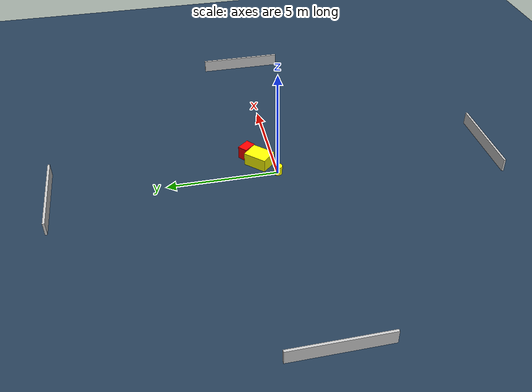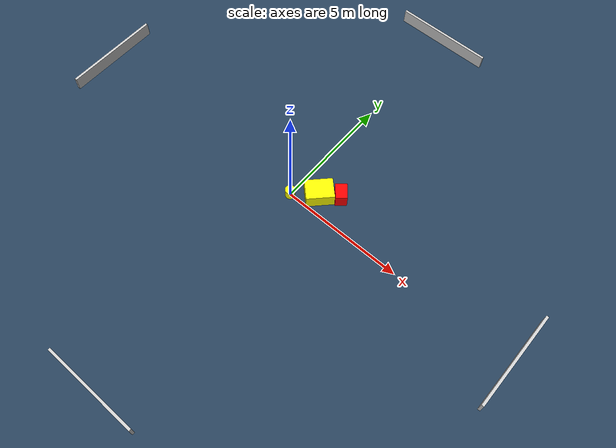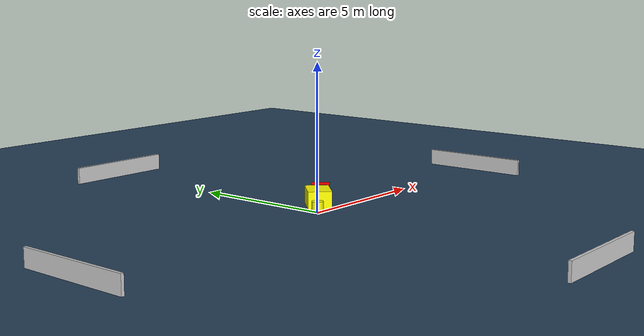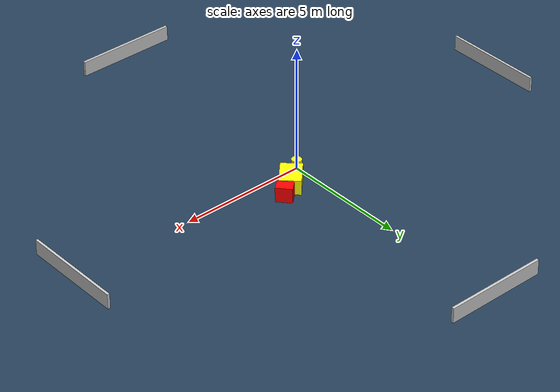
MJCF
<?xml version="1.0" ?>
<mujoco model="generated_environment">
  <option timestep="0.01" integrator="RK4" cone="elliptic"/>
  <default>
    <geom density="1"/>
  </default>
  <asset>
    <texture builtin="gradient" height="3072" name="skybox" rgb1="0.3 0.5 0.7" rgb2="0 0 0" type="skybox" width="512"/>
    <texture builtin="checker" height="300" name="groundplane" rgb1="0.2 0.3 0.4" rgb2="0.1 0.2 0.3" type="2d" width="300"/>
    <material name="groundplane" reflectance="0.2" texrepeat="5 5" texture="groundplane"/>
  </asset>
  <worldbody>
    <light dir="0 0 -1" directional="true" pos="0 0 1.5"/>
    <geom condim="3" friction="0.5 0.005 0.001" material="groundplane" name="floor" pos="0 0 0" size="0 0 0.05" type="plane"/>
    <body name="walls">
      <geom name="wall_1" condim="4" pos="-10.0 0.0 0.3" rgba="0.800000011920929 0.800000011920929 0.800000011920929 1.0" size="0.05 2.0 0.3" type="box"/>
      <geom name="wall_2" condim="4" pos="10.0 0.0 0.3" rgba="0.800000011920929 0.800000011920929 0.800000011920929 1.0" size="0.05 2.0 0.3" type="box"/>
      <geom name="wall_3" condim="4" pos="0.0 -10.0 0.3" rgba="0.800000011920929 0.800000011920929 0.800000011920929 1.0" size="2.0 0.05 0.3" type="box"/>
      <geom name="wall_4" condim="4" pos="0.0 10.0 0.3" rgba="0.800000011920929 0.800000011920929 0.800000011920929 1.0" size="2.0 0.05 0.3" type="box"/>
    </body>
    <body name="robot">
      <joint name="joint_x" type="slide" pos="0 0 0" axis="1 0 0"/>
      <joint name="joint_y" type="slide" pos="0 0 0" axis="0 1 0"/>
      <geom name="robot" type="cylinder" pos="0.0 0.0 0.2" size="0.2 0.2 0.0" mass="5.0" friction="1.0 0.005 0.0001" condim="4" rgba="1.0 1.0 0.0 1.0"/>
    </body>
    <body name="obstacle_1_movable">
      <geom name="obstacle_1_movable" condim="4" pos="0.8737209801466967 0.6806502218597803 0.3" euler="0 0 45.97252314741172" friction="0.0 0.005 0.001" rgba="1.0 1.0 0.0 1.0" size="0.5491285707154856 0.4112884936566977 0.3" type="box" mass="0.1"/>
      <joint type="free"/>
    </body>
    <body name="obstacle_2_static">
      <geom name="obstacle_2_static" condim="4" pos="1.5613156071895038 1.1453473734246524 0.3" euler="0 0 310.20163057670476" friction="0.0 0.005 0.001" rgba="1.0 0.0 0.0 1.0" size="0.3173361037418382 0.22958866701436634 0.3" type="box"/>
    </body>
  </worldbody>
  <actuator>
    <motor name="actuator_x" joint="joint_x" gear="1" ctrlrange="-1 1"/>
    <motor name="actuator_y" joint="joint_y" gear="1" ctrlrange="-1 1"/>
  </actuator>
</mujoco>
